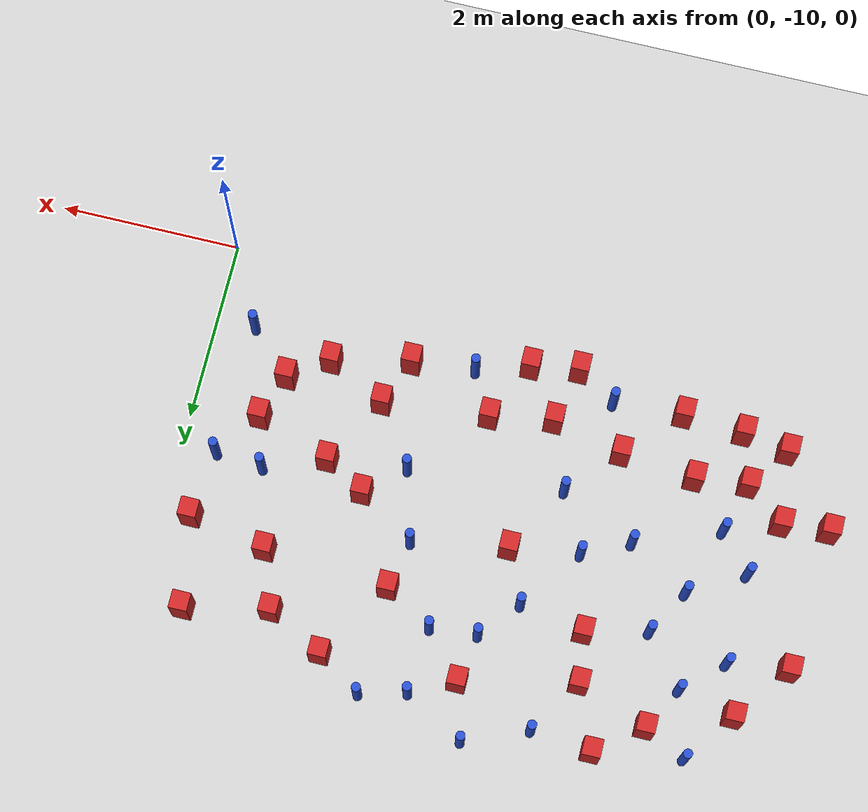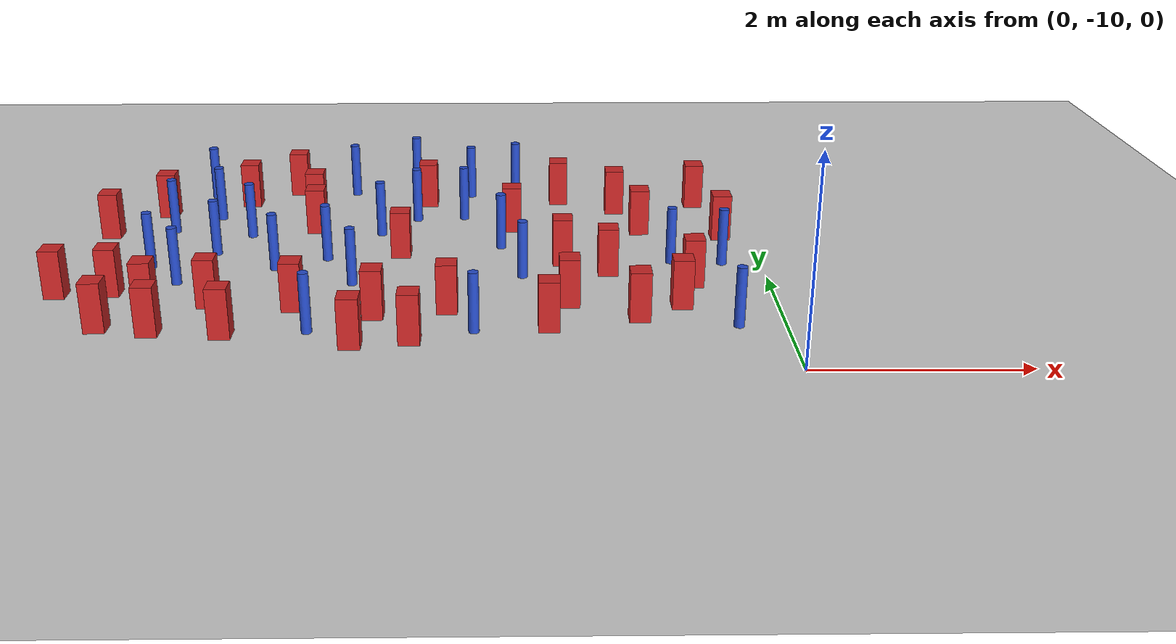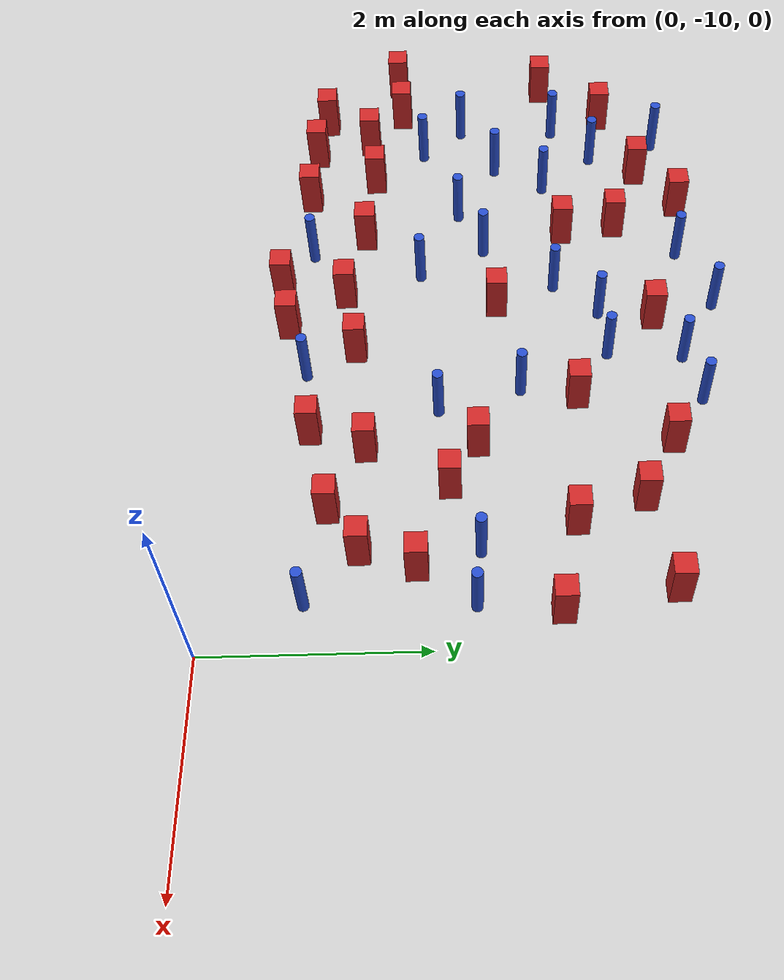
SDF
<sdf version="1.6">
 <world name="default">
  <model name="ground_plane">
   <static>1</static>
   <link name="link">
    <collision name="collision">
     <geometry><plane><normal>0 0 1</normal><size>100 100</size></plane></geometry>
     <surface><friction><ode><mu>100</mu><mu2>50</mu2></ode></friction></surface>
    </collision>
    <visual name="visual">
     <cast_shadows>0</cast_shadows>
     <geometry><plane><normal>0 0 1</normal><size>100 100</size></plane></geometry>
     <material>
      <ambient>1.0 1.0 1.0 1.0</ambient>
      <diffuse>0.8 0.8 0.8 1.0</diffuse>
      <specular>0.01 0.01 0.01 1.000000</specular>
     </material>
    </visual>
   </link>
  </model>
  <model name="square_post_obstacle2">
   <static>true</static>
   <pose>-4.63760378168 -8.66727269813 8.22691968438e-08 7.22125133819e-06 -7.54495500217e-07 2.29674213826e-05</pose>
   <link name="link">
    <pose>0 0 0.25 0 -0 0</pose>
    <inertial>
     <mass>100</mass>
     <inertia>
      <ixx>0.166667</ixx>
      <ixy>0</ixy>
      <ixz>0</ixz>
      <iyy>0.166667</iyy>
      <iyz>0</iyz>
      <izz>0.166667</izz>
     </inertia>
    </inertial>
    <collision name="collision"><geometry><box><size>.2 .2 .5</size></box></geometry></collision>
    <visual name="visual">
     <geometry><box><size>.2 .2 .5</size></box></geometry>
     <material>
      <script><name>Gazebo/Red</name><uri>file://media/materials/scripts/gazebo.material</uri></script>
     </material>
    </visual>
   </link>
  </model>
  <model name="pole_obstacle7">
   <static>true</static>
   <pose>-5.88058021579 -8.07707349114 2.88873142074e-08 -9.9053668967e-09 4.60219948993e-07 -1.20965994957e-07</pose>
   <link name="link">
    <pose>0 0 0.3 0 -0 0</pose>
    <inertial>
     <mass>1</mass>
     <inertia><ixx>0.145833</ixx><ixy>0</ixy><ixz>0</ixz><iyy>0.145833</iyy><iyz>0</iyz><izz>0.125</izz></inertia>
    </inertial>
    <collision name="collision">
     <geometry><cylinder><radius>0.05</radius><length>.6</length></cylinder></geometry>
    </collision>
    <visual name="visual">
     <geometry><cylinder><radius>0.05</radius><length>.6</length></cylinder></geometry>
     <material>
      <script><name>Gazebo/Blue</name><uri>file://media/materials/scripts/gazebo.material</uri></script>
     </material>
    </visual>
   </link>
  </model>
  <model name="square_post_obstacle12">
   <static>true</static>
   <pose>-6.37226330416 -9.11028551085 8.22691968438e-08 7.22125133819e-06 -7.54495500217e-07 2.29674213826e-05</pose>
   <link name="link">
    <pose>0 0 0.25 0 -0 0</pose>
    <inertial>
     <mass>100</mass>
     <inertia>
      <ixx>0.166667</ixx>
      <ixy>0</ixy>
      <ixz>0</ixz>
      <iyy>0.166667</iyy>
      <iyz>0</iyz>
      <izz>0.166667</izz>
     </inertia>
    </inertial>
    <collision name="collision"><geometry><box><size>.2 .2 .5</size></box></geometry></collision>
    <visual name="visual">
     <geometry><box><size>.2 .2 .5</size></box></geometry>
     <material>
      <script><name>Gazebo/Red</name><uri>file://media/materials/scripts/gazebo.material</uri></script>
     </material>
    </visual>
   </link>
  </model>
  <model name="square_post_obstacle16">
   <static>true</static>
   <pose>-1.18355301893 -6.73580773037 8.22691968438e-08 7.2212513382e-06 -7.54495500217e-07 2.29674213826e-05</pose>
   <link name="link">
    <pose>0 0 0.25 0 -0 0</pose>
    <inertial>
     <mass>100</mass>
     <inertia>
      <ixx>0.166667</ixx>
      <ixy>0</ixy>
      <ixz>0</ixz>
      <iyy>0.166667</iyy>
      <iyz>0</iyz>
      <izz>0.166667</izz>
     </inertia>
    </inertial>
    <collision name="collision"><geometry><box><size>.2 .2 .5</size></box></geometry></collision>
    <visual name="visual">
     <geometry><box><size>.2 .2 .5</size></box></geometry>
     <material>
      <script><name>Gazebo/Red</name><uri>file://media/materials/scripts/gazebo.material</uri></script>
     </material>
    </visual>
   </link>
  </model>
  <model name="pole_obstacle10">
   <static>true</static>
   <pose>-6.23004382909 -7.67100332995 2.88873142074e-08 -9.90536690842e-09 4.60219948965e-07 -1.20965994976e-07</pose>
   <link name="link">
    <pose>0 0 0.3 0 -0 0</pose>
    <inertial>
     <mass>1</mass>
     <inertia><ixx>0.145833</ixx><ixy>0</ixy><ixz>0</ixz><iyy>0.145833</iyy><iyz>0</iyz><izz>0.125</izz></inertia>
    </inertial>
    <collision name="collision">
     <geometry><cylinder><radius>0.05</radius><length>.6</length></cylinder></geometry>
    </collision>
    <visual name="visual">
     <geometry><cylinder><radius>0.05</radius><length>.6</length></cylinder></geometry>
     <material>
      <script><name>Gazebo/Blue</name><uri>file://media/materials/scripts/gazebo.material</uri></script>
     </material>
    </visual>
   </link>
  </model>
  <model name="square_post_obstacle19">
   <static>true</static>
   <pose>-5.0313347666 -5.4518797004 8.22691968438e-08 7.2212513382e-06 -7.54495500217e-07 2.29674213826e-05</pose>
   <link name="link">
    <pose>0 0 0.25 0 -0 0</pose>
    <inertial>
     <mass>100</mass>
     <inertia>
      <ixx>0.166667</ixx>
      <ixy>0</ixy>
      <ixz>0</ixz>
      <iyy>0.166667</iyy>
      <iyz>0</iyz>
      <izz>0.166667</izz>
     </inertia>
    </inertial>
    <collision name="collision"><geometry><box><size>.2 .2 .5</size></box></geometry></collision>
    <visual name="visual">
     <geometry><box><size>.2 .2 .5</size></box></geometry>
     <material>
      <script><name>Gazebo/Red</name><uri>file://media/materials/scripts/gazebo.material</uri></script>
     </material>
    </visual>
   </link>
  </model>
  <model name="pole_obstacle11">
   <static>true</static>
   <pose>-2.44617048429 -7.94701474159 2.88873142074e-08 -9.90536689859e-09 4.60219948989e-07 -1.20965994961e-07</pose>
   <link name="link">
    <pose>0 0 0.3 0 -0 0</pose>
    <inertial>
     <mass>1</mass>
     <inertia><ixx>0.145833</ixx><ixy>0</ixy><ixz>0</ixz><iyy>0.145833</iyy><iyz>0</iyz><izz>0.125</izz></inertia>
    </inertial>
    <collision name="collision">
     <geometry><cylinder><radius>0.05</radius><length>.6</length></cylinder></geometry>
    </collision>
    <visual name="visual">
     <geometry><cylinder><radius>0.05</radius><length>.6</length></cylinder></geometry>
     <material>
      <script><name>Gazebo/Blue</name><uri>file://media/materials/scripts/gazebo.material</uri></script>
     </material>
    </visual>
   </link>
  </model>
  <model name="square_post_obstacle23">
   <static>true</static>
   <pose>-5.8733835907 -9.20371530179 8.22691968438e-08 7.22125133819e-06 -7.54495500217e-07 2.29674213826e-05</pose>
   <link name="link">
    <pose>0 0 0.25 0 -0 0</pose>
    <inertial>
     <mass>100</mass>
     <inertia>
      <ixx>0.166667</ixx>
      <ixy>0</ixy>
      <ixz>0</ixz>
      <iyy>0.166667</iyy>
      <iyz>0</iyz>
      <izz>0.166667</izz>
     </inertia>
    </inertial>
    <collision name="collision"><geometry><box><size>.2 .2 .5</size></box></geometry></collision>
    <visual name="visual">
     <geometry><box><size>.2 .2 .5</size></box></geometry>
     <material>
      <script><name>Gazebo/Red</name><uri>file://media/materials/scripts/gazebo.material</uri></script>
     </material>
    </visual>
   </link>
  </model>
  <model name="square_post_obstacle24">
   <static>true</static>
   <pose>-2.03280437511 -5.79021460517 8.22691968438e-08 7.22125133819e-06 -7.54495500217e-07 2.29674213826e-05</pose>
   <link name="link">
    <pose>0 0 0.25 0 -0 0</pose>
    <inertial>
     <mass>100</mass>
     <inertia>
      <ixx>0.166667</ixx>
      <ixy>0</ixy>
      <ixz>0</ixz>
      <iyy>0.166667</iyy>
      <iyz>0</iyz>
      <izz>0.166667</izz>
     </inertia>
    </inertial>
    <collision name="collision"><geometry><box><size>.2 .2 .5</size></box></geometry></collision>
    <visual name="visual">
     <geometry><box><size>.2 .2 .5</size></box></geometry>
     <material>
      <script><name>Gazebo/Red</name><uri>file://media/materials/scripts/gazebo.material</uri></script>
     </material>
    </visual>
   </link>
  </model>
  <model name="pole_obstacle18">
   <static>true</static>
   <pose>-5.78378033065 -6.29106792199 2.88873142074e-08 -9.90536690842e-09 4.60219948965e-07 -1.20965994976e-07</pose>
   <link name="link">
    <pose>0 0 0.3 0 -0 0</pose>
    <inertial>
     <mass>1</mass>
     <inertia><ixx>0.145833</ixx><ixy>0</ixy><ixz>0</ixz><iyy>0.145833</iyy><iyz>0</iyz><izz>0.125</izz></inertia>
    </inertial>
    <collision name="collision">
     <geometry><cylinder><radius>0.05</radius><length>.6</length></cylinder></geometry>
    </collision>
    <visual name="visual">
     <geometry><cylinder><radius>0.05</radius><length>.6</length></cylinder></geometry>
     <material>
      <script><name>Gazebo/Blue</name><uri>file://media/materials/scripts/gazebo.material</uri></script>
     </material>
    </visual>
   </link>
  </model>
  <model name="square_post_obstacle31">
   <static>true</static>
   <pose>-5.20129480829 -9.24687563826 8.22691968438e-08 7.2212513382e-06 -7.54495500217e-07 2.29674213826e-05</pose>
   <link name="link">
    <pose>0 0 0.25 0 -0 0</pose>
    <inertial>
     <mass>100</mass>
     <inertia>
      <ixx>0.166667</ixx>
      <ixy>0</ixy>
      <ixz>0</ixz>
      <iyy>0.166667</iyy>
      <iyz>0</iyz>
      <izz>0.166667</izz>
     </inertia>
    </inertial>
    <collision name="collision"><geometry><box><size>.2 .2 .5</size></box></geometry></collision>
    <visual name="visual">
     <geometry><box><size>.2 .2 .5</size></box></geometry>
     <material>
      <script><name>Gazebo/Red</name><uri>file://media/materials/scripts/gazebo.material</uri></script>
     </material>
    </visual>
   </link>
  </model>
  <model name="square_post_obstacle32">
   <static>true</static>
   <pose>-6.97929215551 -8.35362963833 8.22691968438e-08 7.22125133819e-06 -7.54495500217e-07 2.29674213826e-05</pose>
   <link name="link">
    <pose>0 0 0.25 0 -0 0</pose>
    <inertial>
     <mass>100</mass>
     <inertia>
      <ixx>0.166667</ixx>
      <ixy>0</ixy>
      <ixz>0</ixz>
      <iyy>0.166667</iyy>
      <iyz>0</iyz>
      <izz>0.166667</izz>
     </inertia>
    </inertial>
    <collision name="collision"><geometry><box><size>.2 .2 .5</size></box></geometry></collision>
    <visual name="visual">
     <geometry><box><size>.2 .2 .5</size></box></geometry>
     <material>
      <script><name>Gazebo/Red</name><uri>file://media/materials/scripts/gazebo.material</uri></script>
     </material>
    </visual>
   </link>
  </model>
  <model name="pole_obstacle28">
   <static>true</static>
   <pose>-3.08816072546 -6.31241188107 2.88873142074e-08 -9.90536692062e-09 4.60219948937e-07 -1.20965994985e-07</pose>
   <link name="link">
    <pose>0 0 0.3 0 -0 0</pose>
    <inertial>
     <mass>1</mass>
     <inertia><ixx>0.145833</ixx><ixy>0</ixy><ixz>0</ixz><iyy>0.145833</iyy><iyz>0</iyz><izz>0.125</izz></inertia>
    </inertial>
    <collision name="collision">
     <geometry><cylinder><radius>0.05</radius><length>.6</length></cylinder></geometry>
    </collision>
    <visual name="visual">
     <geometry><cylinder><radius>0.05</radius><length>.6</length></cylinder></geometry>
     <material>
      <script><name>Gazebo/Blue</name><uri>file://media/materials/scripts/gazebo.material</uri></script>
     </material>
    </visual>
   </link>
  </model>
  <model name="square_post_obstacle34">
   <static>true</static>
   <pose>-2.03654238796 -7.58867998927 8.22691968438e-08 7.22125133819e-06 -7.54495500217e-07 2.29674213826e-05</pose>
   <link name="link">
    <pose>0 0 0.25 0 -0 0</pose>
    <inertial>
     <mass>100</mass>
     <inertia>
      <ixx>0.166667</ixx>
      <ixy>0</ixy>
      <ixz>0</ixz>
      <iyy>0.166667</iyy>
      <iyz>0</iyz>
      <izz>0.166667</izz>
     </inertia>
    </inertial>
    <collision name="collision"><geometry><box><size>.2 .2 .5</size></box></geometry></collision>
    <visual name="visual">
     <geometry><box><size>.2 .2 .5</size></box></geometry>
     <material>
      <script><name>Gazebo/Red</name><uri>file://media/materials/scripts/gazebo.material</uri></script>
     </material>
    </visual>
   </link>
  </model>
  <model name="square_post_obstacle35">
   <static>true</static>
   <pose>-0.323597533873 -6.91088772577 8.22691968438e-08 7.2212513382e-06 -7.54495500217e-07 2.29674213826e-05</pose>
   <link name="link">
    <pose>0 0 0.25 0 -0 0</pose>
    <inertial>
     <mass>100</mass>
     <inertia>
      <ixx>0.166667</ixx>
      <ixy>0</ixy>
      <ixz>0</ixz>
      <iyy>0.166667</iyy>
      <iyz>0</iyz>
      <izz>0.166667</izz>
     </inertia>
    </inertial>
    <collision name="collision"><geometry><box><size>.2 .2 .5</size></box></geometry></collision>
    <visual name="visual">
     <geometry><box><size>.2 .2 .5</size></box></geometry>
     <material>
      <script><name>Gazebo/Red</name><uri>file://media/materials/scripts/gazebo.material</uri></script>
     </material>
    </visual>
   </link>
  </model>
  <model name="pole_obstacle46">
   <static>true</static>
   <pose>-3.96363693395 -6.78688151527 2.88873142074e-08 -9.90536690054e-09 4.60219948984e-07 -1.20965994964e-07</pose>
   <link name="link">
    <pose>0 0 0.3 0 -0 0</pose>
    <inertial>
     <mass>1</mass>
     <inertia><ixx>0.145833</ixx><ixy>0</ixy><ixz>0</ixz><iyy>0.145833</iyy><iyz>0</iyz><izz>0.125</izz></inertia>
    </inertial>
    <collision name="collision">
     <geometry><cylinder><radius>0.05</radius><length>.6</length></cylinder></geometry>
    </collision>
    <visual name="visual">
     <geometry><cylinder><radius>0.05</radius><length>.6</length></cylinder></geometry>
     <material>
      <script><name>Gazebo/Blue</name><uri>file://media/materials/scripts/gazebo.material</uri></script>
     </material>
    </visual>
   </link>
  </model>
  <model name="pole_obstacle49">
   <static>true</static>
   <pose>-2.52221582426 -5.45512078845 2.88873142074e-08 -9.90536689859e-09 4.60219948989e-07 -1.20965994961e-07</pose>
   <link name="link">
    <pose>0 0 0.3 0 -0 0</pose>
    <inertial>
     <mass>1</mass>
     <inertia><ixx>0.145833</ixx><ixy>0</ixy><ixz>0</ixz><iyy>0.145833</iyy><iyz>0</iyz><izz>0.125</izz></inertia>
    </inertial>
    <collision name="collision">
     <geometry><cylinder><radius>0.05</radius><length>.6</length></cylinder></geometry>
    </collision>
    <visual name="visual">
     <geometry><cylinder><radius>0.05</radius><length>.6</length></cylinder></geometry>
     <material>
      <script><name>Gazebo/Blue</name><uri>file://media/materials/scripts/gazebo.material</uri></script>
     </material>
    </visual>
   </link>
  </model>
  <model name="square_post_obstacle60">
   <static>true</static>
   <pose>-3.1645180691 -8.73409245294 8.22691968438e-08 7.22125133819e-06 -7.54495500217e-07 2.29674213826e-05</pose>
   <link name="link">
    <pose>0 0 0.25 0 -0 0</pose>
    <inertial>
     <mass>100</mass>
     <inertia>
      <ixx>0.166667</ixx>
      <ixy>0</ixy>
      <ixz>0</ixz>
      <iyy>0.166667</iyy>
      <iyz>0</iyz>
      <izz>0.166667</izz>
     </inertia>
    </inertial>
    <collision name="collision"><geometry><box><size>.2 .2 .5</size></box></geometry></collision>
    <visual name="visual">
     <geometry><box><size>.2 .2 .5</size></box></geometry>
     <material>
      <script><name>Gazebo/Red</name><uri>file://media/materials/scripts/gazebo.material</uri></script>
     </material>
    </visual>
   </link>
  </model>
  <model name="square_post_obstacle61">
   <static>true</static>
   <pose>-0.501546637397 -5.91859040259 8.22691968438e-08 7.2212513382e-06 -7.54495500217e-07 2.29674213826e-05</pose>
   <link name="link">
    <pose>0 0 0.25 0 -0 0</pose>
    <inertial>
     <mass>100</mass>
     <inertia>
      <ixx>0.166667</ixx>
      <ixy>0</ixy>
      <ixz>0</ixz>
      <iyy>0.166667</iyy>
      <iyz>0</iyz>
      <izz>0.166667</izz>
     </inertia>
    </inertial>
    <collision name="collision"><geometry><box><size>.2 .2 .5</size></box></geometry></collision>
    <visual name="visual">
     <geometry><box><size>.2 .2 .5</size></box></geometry>
     <material>
      <script><name>Gazebo/Red</name><uri>file://media/materials/scripts/gazebo.material</uri></script>
     </material>
    </visual>
   </link>
  </model>
  <model name="pole_obstacle66">
   <static>true</static>
   <pose>-5.35324122722 -6.82341440348 2.88873142074e-08 -9.90536690842e-09 4.60219948965e-07 -1.20965994976e-07</pose>
   <link name="link">
    <pose>0 0 0.3 0 -0 0</pose>
    <inertial>
     <mass>1</mass>
     <inertia><ixx>0.145833</ixx><ixy>0</ixy><ixz>0</ixz><iyy>0.145833</iyy><iyz>0</iyz><izz>0.125</izz></inertia>
    </inertial>
    <collision name="collision">
     <geometry><cylinder><radius>0.05</radius><length>.6</length></cylinder></geometry>
    </collision>
    <visual name="visual">
     <geometry><cylinder><radius>0.05</radius><length>.6</length></cylinder></geometry>
     <material>
      <script><name>Gazebo/Blue</name><uri>file://media/materials/scripts/gazebo.material</uri></script>
     </material>
    </visual>
   </link>
  </model>
  <model name="pole_obstacle67">
   <static>true</static>
   <pose>-0.446656989751 -9.112829291 2.88873142074e-08 -9.90536691079e-09 4.6021994896e-07 -1.2096599498e-07</pose>
   <link name="link">
    <pose>0 0 0.3 0 -0 0</pose>
    <inertial>
     <mass>1</mass>
     <inertia><ixx>0.145833</ixx><ixy>0</ixy><ixz>0</ixz><iyy>0.145833</iyy><iyz>0</iyz><izz>0.125</izz></inertia>
    </inertial>
    <collision name="collision">
     <geometry><cylinder><radius>0.05</radius><length>.6</length></cylinder></geometry>
    </collision>
    <visual name="visual">
     <geometry><cylinder><radius>0.05</radius><length>.6</length></cylinder></geometry>
     <material>
      <script><name>Gazebo/Blue</name><uri>file://media/materials/scripts/gazebo.material</uri></script>
     </material>
    </visual>
   </link>
  </model>
  <model name="pole_obstacle73">
   <static>true</static>
   <pose>-4.37287407864 -5.50979460464 2.88873142074e-08 -9.90536690842e-09 4.60219948965e-07 -1.20965994976e-07</pose>
   <link name="link">
    <pose>0 0 0.3 0 -0 0</pose>
    <inertial>
     <mass>1</mass>
     <inertia><ixx>0.145833</ixx><ixy>0</ixy><ixz>0</ixz><iyy>0.145833</iyy><iyz>0</iyz><izz>0.125</izz></inertia>
    </inertial>
    <collision name="collision">
     <geometry><cylinder><radius>0.05</radius><length>.6</length></cylinder></geometry>
    </collision>
    <visual name="visual">
     <geometry><cylinder><radius>0.05</radius><length>.6</length></cylinder></geometry>
     <material>
      <script><name>Gazebo/Blue</name><uri>file://media/materials/scripts/gazebo.material</uri></script>
     </material>
    </visual>
   </link>
  </model>
  <model name="pole_obstacle78">
   <static>true</static>
   <pose>-0.402921049655 -7.63808523639 2.88873142074e-08 -9.90536689683e-09 4.60219948993e-07 -1.20965994957e-07</pose>
   <link name="link">
    <pose>0 0 0.3 0 -0 0</pose>
    <inertial>
     <mass>1</mass>
     <inertia><ixx>0.145833</ixx><ixy>0</ixy><ixz>0</ixz><iyy>0.145833</iyy><iyz>0</iyz><izz>0.125</izz></inertia>
    </inertial>
    <collision name="collision">
     <geometry><cylinder><radius>0.05</radius><length>.6</length></cylinder></geometry>
    </collision>
    <visual name="visual">
     <geometry><cylinder><radius>0.05</radius><length>.6</length></cylinder></geometry>
     <material>
      <script><name>Gazebo/Blue</name><uri>file://media/materials/scripts/gazebo.material</uri></script>
     </material>
    </visual>
   </link>
  </model>
  <model name="square_post_obstacle78">
   <static>true</static>
   <pose>-6.04051277502 -8.64901685351 8.22691968438e-08 7.22125133819e-06 -7.54495500217e-07 2.29674213826e-05</pose>
   <link name="link">
    <pose>0 0 0.25 0 -0 0</pose>
    <inertial>
     <mass>100</mass>
     <inertia>
      <ixx>0.166667</ixx>
      <ixy>0</ixy>
      <ixz>0</ixz>
      <iyy>0.166667</iyy>
      <iyz>0</iyz>
      <izz>0.166667</izz>
     </inertia>
    </inertial>
    <collision name="collision"><geometry><box><size>.2 .2 .5</size></box></geometry></collision>
    <visual name="visual">
     <geometry><box><size>.2 .2 .5</size></box></geometry>
     <material>
      <script><name>Gazebo/Red</name><uri>file://media/materials/scripts/gazebo.material</uri></script>
     </material>
    </visual>
   </link>
  </model>
  <model name="square_post_obstacle79">
   <static>true</static>
   <pose>-3.50660152865 -5.84041387173 8.22691968438e-08 7.2212513382e-06 -7.54495500217e-07 2.29674213826e-05</pose>
   <link name="link">
    <pose>0 0 0.25 0 -0 0</pose>
    <inertial>
     <mass>100</mass>
     <inertia>
      <ixx>0.166667</ixx>
      <ixy>0</ixy>
      <ixz>0</ixz>
      <iyy>0.166667</iyy>
      <iyz>0</iyz>
      <izz>0.166667</izz>
     </inertia>
    </inertial>
    <collision name="collision"><geometry><box><size>.2 .2 .5</size></box></geometry></collision>
    <visual name="visual">
     <geometry><box><size>.2 .2 .5</size></box></geometry>
     <material>
      <script><name>Gazebo/Red</name><uri>file://media/materials/scripts/gazebo.material</uri></script>
     </material>
    </visual>
   </link>
  </model>
  <model name="pole_obstacle88">
   <static>true</static>
   <pose>-3.03049955714 -5.58949395464 2.88873142074e-08 -9.90536689859e-09 4.60219948989e-07 -1.20965994961e-07</pose>
   <link name="link">
    <pose>0 0 0.3 0 -0 0</pose>
    <inertial>
     <mass>1</mass>
     <inertia><ixx>0.145833</ixx><ixy>0</ixy><ixz>0</ixz><iyy>0.145833</iyy><iyz>0</iyz><izz>0.125</izz></inertia>
    </inertial>
    <collision name="collision">
     <geometry><cylinder><radius>0.05</radius><length>.6</length></cylinder></geometry>
    </collision>
    <visual name="visual">
     <geometry><cylinder><radius>0.05</radius><length>.6</length></cylinder></geometry>
     <material>
      <script><name>Gazebo/Blue</name><uri>file://media/materials/scripts/gazebo.material</uri></script>
     </material>
    </visual>
   </link>
  </model>
  <model name="pole_obstacle91">
   <static>true</static>
   <pose>-2.6691412972 -7.17170248385 2.88873142074e-08 -9.90536689859e-09 4.60219948989e-07 -1.20965994961e-07</pose>
   <link name="link">
    <pose>0 0 0.3 0 -0 0</pose>
    <inertial>
     <mass>1</mass>
     <inertia><ixx>0.145833</ixx><ixy>0</ixy><ixz>0</ixz><iyy>0.145833</iyy><iyz>0</iyz><izz>0.125</izz></inertia>
    </inertial>
    <collision name="collision">
     <geometry><cylinder><radius>0.05</radius><length>.6</length></cylinder></geometry>
    </collision>
    <visual name="visual">
     <geometry><cylinder><radius>0.05</radius><length>.6</length></cylinder></geometry>
     <material>
      <script><name>Gazebo/Blue</name><uri>file://media/materials/scripts/gazebo.material</uri></script>
     </material>
    </visual>
   </link>
  </model>
  <model name="square_post_obstacle98">
   <static>true</static>
   <pose>-6.39206464829 -6.16194853285 8.22691968438e-08 7.2212513382e-06 -7.54495500217e-07 2.29674213826e-05</pose>
   <link name="link">
    <pose>0 0 0.25 0 -0 0</pose>
    <inertial>
     <mass>100</mass>
     <inertia>
      <ixx>0.166667</ixx>
      <ixy>0</ixy>
      <ixz>0</ixz>
      <iyy>0.166667</iyy>
      <iyz>0</iyz>
      <izz>0.166667</izz>
     </inertia>
    </inertial>
    <collision name="collision"><geometry><box><size>.2 .2 .5</size></box></geometry></collision>
    <visual name="visual">
     <geometry><box><size>.2 .2 .5</size></box></geometry>
     <material>
      <script><name>Gazebo/Red</name><uri>file://media/materials/scripts/gazebo.material</uri></script>
     </material>
    </visual>
   </link>
  </model>
  <model name="pole_obstacle113">
   <static>true</static>
   <pose>-4.13653894209 -8.11173226711 2.88873142074e-08 -9.9053668967e-09 4.60219948993e-07 -1.20965994957e-07</pose>
   <link name="link">
    <pose>0 0 0.3 0 -0 0</pose>
    <inertial>
     <mass>1</mass>
     <inertia><ixx>0.145833</ixx><ixy>0</ixy><ixz>0</ixz><iyy>0.145833</iyy><iyz>0</iyz><izz>0.125</izz></inertia>
    </inertial>
    <collision name="collision">
     <geometry><cylinder><radius>0.05</radius><length>.6</length></cylinder></geometry>
    </collision>
    <visual name="visual">
     <geometry><cylinder><radius>0.05</radius><length>.6</length></cylinder></geometry>
     <material>
      <script><name>Gazebo/Blue</name><uri>file://media/materials/scripts/gazebo.material</uri></script>
     </material>
    </visual>
   </link>
  </model>
  <model name="square_post_obstacle111">
   <static>true</static>
   <pose>-6.85996700925 -6.78247969265 8.22691968438e-08 7.2212513382e-06 -7.54495500217e-07 2.29674213826e-05</pose>
   <link name="link">
    <pose>0 0 0.25 0 -0 0</pose>
    <inertial>
     <mass>100</mass>
     <inertia>
      <ixx>0.166667</ixx>
      <ixy>0</ixy>
      <ixz>0</ixz>
      <iyy>0.166667</iyy>
      <iyz>0</iyz>
      <izz>0.166667</izz>
     </inertia>
    </inertial>
    <collision name="collision"><geometry><box><size>.2 .2 .5</size></box></geometry></collision>
    <visual name="visual">
     <geometry><box><size>.2 .2 .5</size></box></geometry>
     <material>
      <script><name>Gazebo/Red</name><uri>file://media/materials/scripts/gazebo.material</uri></script>
     </material>
    </visual>
   </link>
  </model>
  <model name="pole_obstacle120">
   <static>true</static>
   <pose>-6.21111086642 -6.68106262074 2.88873142074e-08 -9.90536690842e-09 4.60219948965e-07 -1.20965994976e-07</pose>
   <link name="link">
    <pose>0 0 0.3 0 -0 0</pose>
    <inertial>
     <mass>1</mass>
     <inertia><ixx>0.145833</ixx><ixy>0</ixy><ixz>0</ixz><iyy>0.145833</iyy><iyz>0</iyz><izz>0.125</izz></inertia>
    </inertial>
    <collision name="collision">
     <geometry><cylinder><radius>0.05</radius><length>.6</length></cylinder></geometry>
    </collision>
    <visual name="visual">
     <geometry><cylinder><radius>0.05</radius><length>.6</length></cylinder></geometry>
     <material>
      <script><name>Gazebo/Blue</name><uri>file://media/materials/scripts/gazebo.material</uri></script>
     </material>
    </visual>
   </link>
  </model>
  <model name="pole_obstacle124">
   <static>true</static>
   <pose>-0.923930058449 -7.59194837778 2.88873142074e-08 -9.90536689661e-09 4.60219948993e-07 -1.20965994957e-07</pose>
   <link name="link">
    <pose>0 0 0.3 0 -0 0</pose>
    <inertial>
     <mass>1</mass>
     <inertia><ixx>0.145833</ixx><ixy>0</ixy><ixz>0</ixz><iyy>0.145833</iyy><iyz>0</iyz><izz>0.125</izz></inertia>
    </inertial>
    <collision name="collision">
     <geometry><cylinder><radius>0.05</radius><length>.6</length></cylinder></geometry>
    </collision>
    <visual name="visual">
     <geometry><cylinder><radius>0.05</radius><length>.6</length></cylinder></geometry>
     <material>
      <script><name>Gazebo/Blue</name><uri>file://media/materials/scripts/gazebo.material</uri></script>
     </material>
    </visual>
   </link>
  </model>
  <model name="square_post_obstacle114">
   <static>true</static>
   <pose>-2.5591305391 -6.64204028675 8.22691968438e-08 7.2212513382e-06 -7.54495500217e-07 2.29674213826e-05</pose>
   <link name="link">
    <pose>0 0 0.25 0 -0 0</pose>
    <inertial>
     <mass>100</mass>
     <inertia>
      <ixx>0.166667</ixx>
      <ixy>0</ixy>
      <ixz>0</ixz>
      <iyy>0.166667</iyy>
      <iyz>0</iyz>
      <izz>0.166667</izz>
     </inertia>
    </inertial>
    <collision name="collision"><geometry><box><size>.2 .2 .5</size></box></geometry></collision>
    <visual name="visual">
     <geometry><box><size>.2 .2 .5</size></box></geometry>
     <material>
      <script><name>Gazebo/Red</name><uri>file://media/materials/scripts/gazebo.material</uri></script>
     </material>
    </visual>
   </link>
  </model>
  <model name="square_post_obstacle120">
   <static>true</static>
   <pose>-2.00104291726 -8.61474112962 8.22691968438e-08 7.22125133819e-06 -7.54495500217e-07 2.29674213826e-05</pose>
   <link name="link">
    <pose>0 0 0.25 0 -0 0</pose>
    <inertial>
     <mass>100</mass>
     <inertia>
      <ixx>0.166667</ixx>
      <ixy>0</ixy>
      <ixz>0</ixz>
      <iyy>0.166667</iyy>
      <iyz>0</iyz>
      <izz>0.166667</izz>
     </inertia>
    </inertial>
    <collision name="collision"><geometry><box><size>.2 .2 .5</size></box></geometry></collision>
    <visual name="visual">
     <geometry><box><size>.2 .2 .5</size></box></geometry>
     <material>
      <script><name>Gazebo/Red</name><uri>file://media/materials/scripts/gazebo.material</uri></script>
     </material>
    </visual>
   </link>
  </model>
  <model name="square_post_obstacle123">
   <static>true</static>
   <pose>-4.00111417914 -9.47328340145 8.22691968438e-08 7.22125133819e-06 -7.54495500217e-07 2.29674213826e-05</pose>
   <link name="link">
    <pose>0 0 0.25 0 -0 0</pose>
    <inertial>
     <mass>100</mass>
     <inertia>
      <ixx>0.166667</ixx>
      <ixy>0</ixy>
      <ixz>0</ixz>
      <iyy>0.166667</iyy>
      <iyz>0</iyz>
      <izz>0.166667</izz>
     </inertia>
    </inertial>
    <collision name="collision"><geometry><box><size>.2 .2 .5</size></box></geometry></collision>
    <visual name="visual">
     <geometry><box><size>.2 .2 .5</size></box></geometry>
     <material>
      <script><name>Gazebo/Red</name><uri>file://media/materials/scripts/gazebo.material</uri></script>
     </material>
    </visual>
   </link>
  </model>
  <model name="square_post_obstacle127">
   <static>true</static>
   <pose>-0.927638836757 -8.65025625708 8.22691968438e-08 7.22125133819e-06 -7.54495500217e-07 2.29674213826e-05</pose>
   <link name="link">
    <pose>0 0 0.25 0 -0 0</pose>
    <inertial>
     <mass>100</mass>
     <inertia>
      <ixx>0.166667</ixx>
      <ixy>0</ixy>
      <ixz>0</ixz>
      <iyy>0.166667</iyy>
      <iyz>0</iyz>
      <izz>0.166667</izz>
     </inertia>
    </inertial>
    <collision name="collision"><geometry><box><size>.2 .2 .5</size></box></geometry></collision>
    <visual name="visual">
     <geometry><box><size>.2 .2 .5</size></box></geometry>
     <material>
      <script><name>Gazebo/Red</name><uri>file://media/materials/scripts/gazebo.material</uri></script>
     </material>
    </visual>
   </link>
  </model>
  <model name="square_post_obstacle142">
   <static>true</static>
   <pose>-3.70642630588 -7.36588051878 8.22691968438e-08 7.2212513382e-06 -7.54495500217e-07 2.29674213826e-05</pose>
   <link name="link">
    <pose>0 0 0.25 0 -0 0</pose>
    <inertial>
     <mass>100</mass>
     <inertia>
      <ixx>0.166667</ixx>
      <ixy>0</ixy>
      <ixz>0</ixz>
      <iyy>0.166667</iyy>
      <iyz>0</iyz>
      <izz>0.166667</izz>
     </inertia>
    </inertial>
    <collision name="collision"><geometry><box><size>.2 .2 .5</size></box></geometry></collision>
    <visual name="visual">
     <geometry><box><size>.2 .2 .5</size></box></geometry>
     <material>
      <script><name>Gazebo/Red</name><uri>file://media/materials/scripts/gazebo.material</uri></script>
     </material>
    </visual>
   </link>
  </model>
  <model name="pole_obstacle156">
   <static>true</static>
   <pose>-4.46004821501 -7.474280419 2.88873142074e-08 -9.90536690842e-09 4.60219948965e-07 -1.20965994976e-07</pose>
   <link name="link">
    <pose>0 0 0.3 0 -0 0</pose>
    <inertial>
     <mass>1</mass>
     <inertia><ixx>0.145833</ixx><ixy>0</ixy><ixz>0</ixz><iyy>0.145833</iyy><iyz>0</iyz><izz>0.125</izz></inertia>
    </inertial>
    <collision name="collision">
     <geometry><cylinder><radius>0.05</radius><length>.6</length></cylinder></geometry>
    </collision>
    <visual name="visual">
     <geometry><cylinder><radius>0.05</radius><length>.6</length></cylinder></geometry>
     <material>
      <script><name>Gazebo/Blue</name><uri>file://media/materials/scripts/gazebo.material</uri></script>
     </material>
    </visual>
   </link>
  </model>
  <model name="square_post_obstacle148">
   <static>true</static>
   <pose>-2.20683385816 -9.13403290241 8.22691968438e-08 7.22125133819e-06 -7.54495500217e-07 2.29674213826e-05</pose>
   <link name="link">
    <pose>0 0 0.25 0 -0 0</pose>
    <inertial>
     <mass>100</mass>
     <inertia>
      <ixx>0.166667</ixx>
      <ixy>0</ixy>
      <ixz>0</ixz>
      <iyy>0.166667</iyy>
      <iyz>0</iyz>
      <izz>0.166667</izz>
     </inertia>
    </inertial>
    <collision name="collision"><geometry><box><size>.2 .2 .5</size></box></geometry></collision>
    <visual name="visual">
     <geometry><box><size>.2 .2 .5</size></box></geometry>
     <material>
      <script><name>Gazebo/Red</name><uri>file://media/materials/scripts/gazebo.material</uri></script>
     </material>
    </visual>
   </link>
  </model>
  <model name="square_post_obstacle153">
   <static>true</static>
   <pose>-1.41371789169 -6.11213143031 8.22691968438e-08 7.2212513382e-06 -7.54495500217e-07 2.29674213826e-05</pose>
   <link name="link">
    <pose>0 0 0.25 0 -0 0</pose>
    <inertial>
     <mass>100</mass>
     <inertia>
      <ixx>0.166667</ixx>
      <ixy>0</ixy>
      <ixz>0</ixz>
      <iyy>0.166667</iyy>
      <iyz>0</iyz>
      <izz>0.166667</izz>
     </inertia>
    </inertial>
    <collision name="collision"><geometry><box><size>.2 .2 .5</size></box></geometry></collision>
    <visual name="visual">
     <geometry><box><size>.2 .2 .5</size></box></geometry>
     <material>
      <script><name>Gazebo/Red</name><uri>file://media/materials/scripts/gazebo.material</uri></script>
     </material>
    </visual>
   </link>
  </model>
  <model name="pole_obstacle163">
   <static>true</static>
   <pose>-3.68521693411 -5.22319250593 2.88873142074e-08 -9.90536692062e-09 4.60219948937e-07 -1.20965994985e-07</pose>
   <link name="link">
    <pose>0 0 0.3 0 -0 0</pose>
    <inertial>
     <mass>1</mass>
     <inertia><ixx>0.145833</ixx><ixy>0</ixy><ixz>0</ixz><iyy>0.145833</iyy><iyz>0</iyz><izz>0.125</izz></inertia>
    </inertial>
    <collision name="collision">
     <geometry><cylinder><radius>0.05</radius><length>.6</length></cylinder></geometry>
    </collision>
    <visual name="visual">
     <geometry><cylinder><radius>0.05</radius><length>.6</length></cylinder></geometry>
     <material>
      <script><name>Gazebo/Blue</name><uri>file://media/materials/scripts/gazebo.material</uri></script>
     </material>
    </visual>
   </link>
  </model>
  <model name="square_post_obstacle158">
   <static>true</static>
   <pose>-3.47301617522 -9.39156642333 8.22691968438e-08 7.22125133819e-06 -7.54495500217e-07 2.29674213826e-05</pose>
   <link name="link">
    <pose>0 0 0.25 0 -0 0</pose>
    <inertial>
     <mass>100</mass>
     <inertia>
      <ixx>0.166667</ixx>
      <ixy>0</ixy>
      <ixz>0</ixz>
      <iyy>0.166667</iyy>
      <iyz>0</iyz>
      <izz>0.166667</izz>
     </inertia>
    </inertial>
    <collision name="collision"><geometry><box><size>.2 .2 .5</size></box></geometry></collision>
    <visual name="visual">
     <geometry><box><size>.2 .2 .5</size></box></geometry>
     <material>
      <script><name>Gazebo/Red</name><uri>file://media/materials/scripts/gazebo.material</uri></script>
     </material>
    </visual>
   </link>
  </model>
  <model name="pole_obstacle169">
   <static>true</static>
   <pose>-3.60210956877 -6.36198724984 2.88873142074e-08 -9.90536689859e-09 4.60219948989e-07 -1.20965994961e-07</pose>
   <link name="link">
    <pose>0 0 0.3 0 -0 0</pose>
    <inertial>
     <mass>1</mass>
     <inertia><ixx>0.145833</ixx><ixy>0</ixy><ixz>0</ixz><iyy>0.145833</iyy><iyz>0</iyz><izz>0.125</izz></inertia>
    </inertial>
    <collision name="collision">
     <geometry><cylinder><radius>0.05</radius><length>.6</length></cylinder></geometry>
    </collision>
    <visual name="visual">
     <geometry><cylinder><radius>0.05</radius><length>.6</length></cylinder></geometry>
     <material>
      <script><name>Gazebo/Blue</name><uri>file://media/materials/scripts/gazebo.material</uri></script>
     </material>
    </visual>
   </link>
  </model>
  <model name="pole_obstacle171">
   <static>true</static>
   <pose>-5.63321379163 -7.32034134418 2.88873142074e-08 -9.90536690842e-09 4.60219948965e-07 -1.20965994976e-07</pose>
   <link name="link">
    <pose>0 0 0.3 0 -0 0</pose>
    <inertial>
     <mass>1</mass>
     <inertia><ixx>0.145833</ixx><ixy>0</ixy><ixz>0</ixz><iyy>0.145833</iyy><iyz>0</iyz><izz>0.125</izz></inertia>
    </inertial>
    <collision name="collision">
     <geometry><cylinder><radius>0.05</radius><length>.6</length></cylinder></geometry>
    </collision>
    <visual name="visual">
     <geometry><cylinder><radius>0.05</radius><length>.6</length></cylinder></geometry>
     <material>
      <script><name>Gazebo/Blue</name><uri>file://media/materials/scripts/gazebo.material</uri></script>
     </material>
    </visual>
   </link>
  </model>
  <model name="pole_obstacle174">
   <static>true</static>
   <pose>-5.98715450435 -5.59807285257 2.88873142074e-08 -9.90536690842e-09 4.60219948965e-07 -1.20965994976e-07</pose>
   <link name="link">
    <pose>0 0 0.3 0 -0 0</pose>
    <inertial>
     <mass>1</mass>
     <inertia><ixx>0.145833</ixx><ixy>0</ixy><ixz>0</ixz><iyy>0.145833</iyy><iyz>0</iyz><izz>0.125</izz></inertia>
    </inertial>
    <collision name="collision">
     <geometry><cylinder><radius>0.05</radius><length>.6</length></cylinder></geometry>
    </collision>
    <visual name="visual">
     <geometry><cylinder><radius>0.05</radius><length>.6</length></cylinder></geometry>
     <material>
      <script><name>Gazebo/Blue</name><uri>file://media/materials/scripts/gazebo.material</uri></script>
     </material>
    </visual>
   </link>
  </model>
  <model name="square_post_obstacle188">
   <static>true</static>
   <pose>-5.45820331346 -8.58041301051 8.22691968438e-08 7.22125133819e-06 -7.54495500217e-07 2.29674213826e-05</pose>
   <link name="link">
    <pose>0 0 0.25 0 -0 0</pose>
    <inertial>
     <mass>100</mass>
     <inertia>
      <ixx>0.166667</ixx>
      <ixy>0</ixy>
      <ixz>0</ixz>
      <iyy>0.166667</iyy>
      <iyz>0</iyz>
      <izz>0.166667</izz>
     </inertia>
    </inertial>
    <collision name="collision"><geometry><box><size>.2 .2 .5</size></box></geometry></collision>
    <visual name="visual">
     <geometry><box><size>.2 .2 .5</size></box></geometry>
     <material>
      <script><name>Gazebo/Red</name><uri>file://media/materials/scripts/gazebo.material</uri></script>
     </material>
    </visual>
   </link>
  </model>
  <model name="square_post_obstacle194">
   <static>true</static>
   <pose>-1.35534556969 -8.93855241309 8.22691968438e-08 7.22125133819e-06 -7.54495500217e-07 2.29674213826e-05</pose>
   <link name="link">
    <pose>0 0 0.25 0 -0 0</pose>
    <inertial>
     <mass>100</mass>
     <inertia>
      <ixx>0.166667</ixx>
      <ixy>0</ixy>
      <ixz>0</ixz>
      <iyy>0.166667</iyy>
      <iyz>0</iyz>
      <izz>0.166667</izz>
     </inertia>
    </inertial>
    <collision name="collision"><geometry><box><size>.2 .2 .5</size></box></geometry></collision>
    <visual name="visual">
     <geometry><box><size>.2 .2 .5</size></box></geometry>
     <material>
      <script><name>Gazebo/Red</name><uri>file://media/materials/scripts/gazebo.material</uri></script>
     </material>
    </visual>
   </link>
  </model>
  <model name="square_post_obstacle199">
   <static>true</static>
   <pose>-5.52257510912 -5.83186035257 8.22691968438e-08 7.2212513382e-06 -7.54495500217e-07 2.29674213826e-05</pose>
   <link name="link">
    <pose>0 0 0.25 0 -0 0</pose>
    <inertial>
     <mass>100</mass>
     <inertia>
      <ixx>0.166667</ixx>
      <ixy>0</ixy>
      <ixz>0</ixz>
      <iyy>0.166667</iyy>
      <iyz>0</iyz>
      <izz>0.166667</izz>
     </inertia>
    </inertial>
    <collision name="collision"><geometry><box><size>.2 .2 .5</size></box></geometry></collision>
    <visual name="visual">
     <geometry><box><size>.2 .2 .5</size></box></geometry>
     <material>
      <script><name>Gazebo/Red</name><uri>file://media/materials/scripts/gazebo.material</uri></script>
     </material>
    </visual>
   </link>
  </model>
  <model name="square_post_obstacle200">
   <static>true</static>
   <pose>-3.85562557045 -8.85084676489 8.22691968438e-08 7.22125133819e-06 -7.54495500217e-07 2.29674213826e-05</pose>
   <link name="link">
    <pose>0 0 0.25 0 -0 0</pose>
    <inertial>
     <mass>100</mass>
     <inertia>
      <ixx>0.166667</ixx>
      <ixy>0</ixy>
      <ixz>0</ixz>
      <iyy>0.166667</iyy>
      <iyz>0</iyz>
      <izz>0.166667</izz>
     </inertia>
    </inertial>
    <collision name="collision"><geometry><box><size>.2 .2 .5</size></box></geometry></collision>
    <visual name="visual">
     <geometry><box><size>.2 .2 .5</size></box></geometry>
     <material>
      <script><name>Gazebo/Red</name><uri>file://media/materials/scripts/gazebo.material</uri></script>
     </material>
    </visual>
   </link>
  </model>
  <model name="square_post_obstacle201">
   <static>true</static>
   <pose>-0.759654195042 -8.14693550954 8.22691968438e-08 7.22125133819e-06 -7.54495500217e-07 2.29674213826e-05</pose>
   <link name="link">
    <pose>0 0 0.25 0 -0 0</pose>
    <inertial>
     <mass>100</mass>
     <inertia>
      <ixx>0.166667</ixx>
      <ixy>0</ixy>
      <ixz>0</ixz>
      <iyy>0.166667</iyy>
      <iyz>0</iyz>
      <izz>0.166667</izz>
     </inertia>
    </inertial>
    <collision name="collision"><geometry><box><size>.2 .2 .5</size></box></geometry></collision>
    <visual name="visual">
     <geometry><box><size>.2 .2 .5</size></box></geometry>
     <material>
      <script><name>Gazebo/Red</name><uri>file://media/materials/scripts/gazebo.material</uri></script>
     </material>
    </visual>
   </link>
  </model>
  <model name="square_post_obstacle209">
   <static>true</static>
   <pose>-4.67285879244 -6.66771297116 8.22691968438e-08 7.2212513382e-06 -7.54495500217e-07 2.29674213826e-05</pose>
   <link name="link">
    <pose>0 0 0.25 0 -0 0</pose>
    <inertial>
     <mass>100</mass>
     <inertia>
      <ixx>0.166667</ixx>
      <ixy>0</ixy>
      <ixz>0</ixz>
      <iyy>0.166667</iyy>
      <iyz>0</iyz>
      <izz>0.166667</izz>
     </inertia>
    </inertial>
    <collision name="collision"><geometry><box><size>.2 .2 .5</size></box></geometry></collision>
    <visual name="visual">
     <geometry><box><size>.2 .2 .5</size></box></geometry>
     <material>
      <script><name>Gazebo/Red</name><uri>file://media/materials/scripts/gazebo.material</uri></script>
     </material>
    </visual>
   </link>
  </model>
  <model name="square_post_obstacle218">
   <static>true</static>
   <pose>-6.46260854012 -8.30930384964 8.22691968438e-08 7.22125133819e-06 -7.54495500217e-07 2.29674213826e-05</pose>
   <link name="link">
    <pose>0 0 0.25 0 -0 0</pose>
    <inertial>
     <mass>100</mass>
     <inertia>
      <ixx>0.166667</ixx>
      <ixy>0</ixy>
      <ixz>0</ixz>
      <iyy>0.166667</iyy>
      <iyz>0</iyz>
      <izz>0.166667</izz>
     </inertia>
    </inertial>
    <collision name="collision"><geometry><box><size>.2 .2 .5</size></box></geometry></collision>
    <visual name="visual">
     <geometry><box><size>.2 .2 .5</size></box></geometry>
     <material>
      <script><name>Gazebo/Red</name><uri>file://media/materials/scripts/gazebo.material</uri></script>
     </material>
    </visual>
   </link>
  </model>
  <model name="square_post_obstacle228">
   <static>true</static>
   <pose>-1.58721034384 -7.85042040361 8.22691968438e-08 7.2212513382e-06 -7.54495500217e-07 2.29674213826e-05</pose>
   <link name="link">
    <pose>0 0 0.25 0 -0 0</pose>
    <inertial>
     <mass>100</mass>
     <inertia>
      <ixx>0.166667</ixx>
      <ixy>0</ixy>
      <ixz>0</ixz>
      <iyy>0.166667</iyy>
      <iyz>0</iyz>
      <izz>0.166667</izz>
     </inertia>
    </inertial>
    <collision name="collision"><geometry><box><size>.2 .2 .5</size></box></geometry></collision>
    <visual name="visual">
     <geometry><box><size>.2 .2 .5</size></box></geometry>
     <material>
      <script><name>Gazebo/Red</name><uri>file://media/materials/scripts/gazebo.material</uri></script>
     </material>
    </visual>
   </link>
  </model>
  <model name="square_post_obstacle230">
   <static>true</static>
   <pose>-4.75186483892 -6.12751328757 8.22691968438e-08 7.2212513382e-06 -7.54495500217e-07 2.29674213826e-05</pose>
   <link name="link">
    <pose>0 0 0.25 0 -0 0</pose>
    <inertial>
     <mass>100</mass>
     <inertia>
      <ixx>0.166667</ixx>
      <ixy>0</ixy>
      <ixz>0</ixz>
      <iyy>0.166667</iyy>
      <iyz>0</iyz>
      <izz>0.166667</izz>
     </inertia>
    </inertial>
    <collision name="collision"><geometry><box><size>.2 .2 .5</size></box></geometry></collision>
    <visual name="visual">
     <geometry><box><size>.2 .2 .5</size></box></geometry>
     <material>
      <script><name>Gazebo/Red</name><uri>file://media/materials/scripts/gazebo.material</uri></script>
     </material>
    </visual>
   </link>
  </model>
  <model name="pole_obstacle207">
   <static>true</static>
   <pose>-2.89727999087 -9.20185997959 2.88873142074e-08 -9.9053668994e-09 4.60219948987e-07 -1.20965994963e-07</pose>
   <link name="link">
    <pose>0 0 0.3 0 -0 0</pose>
    <inertial>
     <mass>1</mass>
     <inertia><ixx>0.145833</ixx><ixy>0</ixy><ixz>0</ixz><iyy>0.145833</iyy><iyz>0</iyz><izz>0.125</izz></inertia>
    </inertial>
    <collision name="collision">
     <geometry><cylinder><radius>0.05</radius><length>.6</length></cylinder></geometry>
    </collision>
    <visual name="visual">
     <geometry><cylinder><radius>0.05</radius><length>.6</length></cylinder></geometry>
     <material>
      <script><name>Gazebo/Blue</name><uri>file://media/materials/scripts/gazebo.material</uri></script>
     </material>
    </visual>
   </link>
  </model>
  <model name="pole_obstacle213">
   <static>true</static>
   <pose>-4.96495999087 -7.71964997959 2.88873142074e-08 -9.90536690842e-09 4.60219948965e-07 -1.20965994976e-07</pose>
   <link name="link">
    <pose>0 0 0.3 0 -0 0</pose>
    <inertial>
     <mass>1</mass>
     <inertia><ixx>0.145833</ixx><ixy>0</ixy><ixz>0</ixz><iyy>0.145833</iyy><iyz>0</iyz><izz>0.125</izz></inertia>
    </inertial>
    <collision name="collision">
     <geometry><cylinder><radius>0.05</radius><length>.6</length></cylinder></geometry>
    </collision>
    <visual name="visual">
     <geometry><cylinder><radius>0.05</radius><length>.6</length></cylinder></geometry>
     <material>
      <script><name>Gazebo/Blue</name><uri>file://media/materials/scripts/gazebo.material</uri></script>
     </material>
    </visual>
   </link>
  </model>
  <model name="pole_obstacle215">
   <static>true</static>
   <pose>-4.43141999087 -9.19587997959 2.88873142074e-08 -9.9053668967e-09 4.60219948993e-07 -1.20965994957e-07</pose>
   <link name="link">
    <pose>0 0 0.3 0 -0 0</pose>
    <inertial>
     <mass>1</mass>
     <inertia><ixx>0.145833</ixx><ixy>0</ixy><ixz>0</ixz><iyy>0.145833</iyy><iyz>0</iyz><izz>0.125</izz></inertia>
    </inertial>
    <collision name="collision">
     <geometry><cylinder><radius>0.05</radius><length>.6</length></cylinder></geometry>
    </collision>
    <visual name="visual">
     <geometry><cylinder><radius>0.05</radius><length>.6</length></cylinder></geometry>
     <material>
      <script><name>Gazebo/Blue</name><uri>file://media/materials/scripts/gazebo.material</uri></script>
     </material>
    </visual>
   </link>
  </model>
 </world>
</sdf>
